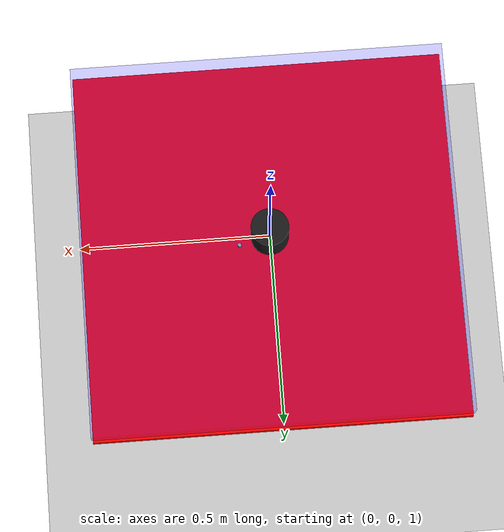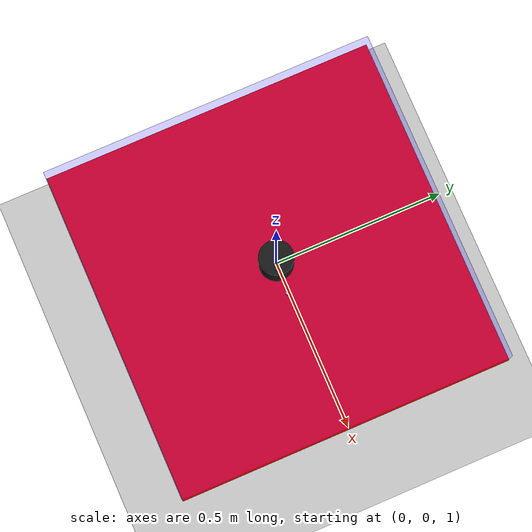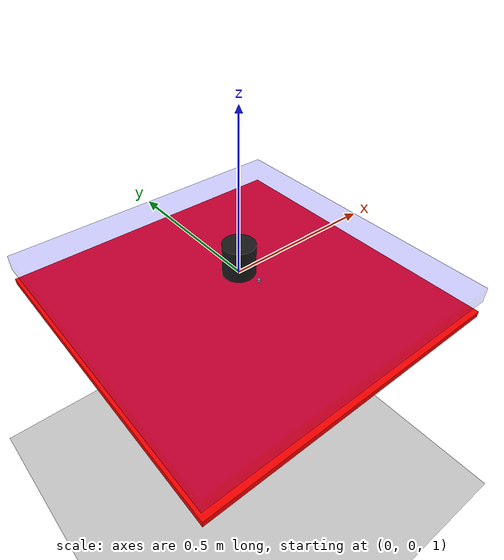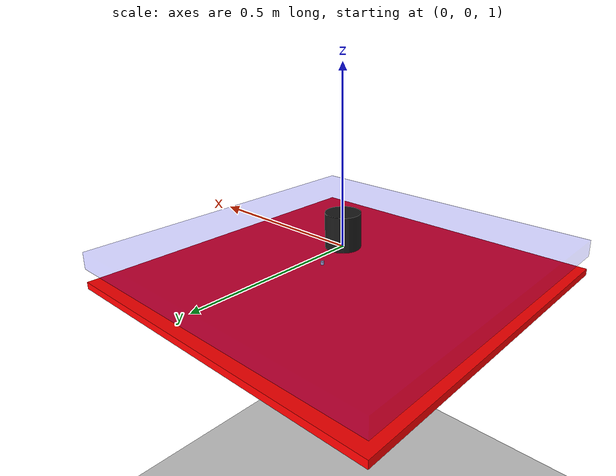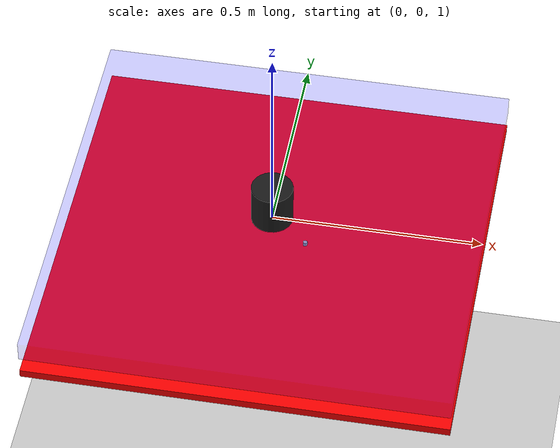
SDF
<?xml version="1.0"?>
<sdf version="1.4">
  <world name="default">

    <!-- Ground Plane -->
    <include>
      <uri>model://ground_plane</uri>
    </include>

    <include>
      <uri>model://sun</uri>
    </include>

    <model name="plane">
      <pose>0 0 0.9 0 0 0</pose>
      <static>true</static>
      <link name="link">
        <collision name="collision">
          <geometry>
            <box>
              <size>1 1 0.02</size>
            </box>
          </geometry>
        </collision>

        <visual name="visual">
          <geometry>
            <box>
              <size>1 1 0.02</size>
            </box>
          </geometry>

          <material>
            <ambient>1 0 0 1</ambient>
          </material>
        </visual>
      </link>
    </model>

    <model name="plane2">
      <pose>0 0 0.975 0 0 0</pose>
      <static>true</static>
      <link name="link">
        <collision name="collision">
          <geometry>
            <box>
              <size>1 1 0.05</size>
            </box>
          </geometry>
        </collision>

        <visual name="visual">
          <geometry>
            <box>
              <size>1 1 0.05</size>
            </box>
          </geometry>
          <transparency>0.5</transparency>
          <material>
            <diffuse>0 0 1 0.1</diffuse>
          </material>
        </visual>
      </link>
    </model>

    <model name="actuator_magnet">
      <pose>0 0 1.05 0 0 0</pose>
      <static>true</static>
      <link name="magnet">
        <inertial>
          <mass>4.0</mass>
        </inertial>
        <collision name="collision">
          <geometry>
            <cylinder>
              <radius>0.05</radius>
              <length>0.1</length>
            </cylinder>
          </geometry>
        </collision>

        <visual name="visual">
          <geometry>
            <cylinder>
              <radius>0.05</radius>
              <length>0.1</length>
            </cylinder>
          </geometry>
          <material>
            <diffuse>0.1 0.1 0.1 1</diffuse>
            <specular>0.1 0.1 0.1 1</specular>
            <emissive>0.5 0.5 0.5 0.1</emissive>
          </material>
        </visual>
      </link>
      <plugin name="dipole_magnet" filename="libstorm_gazebo_dipole_magnet.so">
          <bodyName>magnet</bodyName>
          <dipole_moment>0 0 970</dipole_moment>
          <!-- Set to false if not using ROS -->
          <shouldPublish>true</shouldPublish>
          <topicNs>electromagnet</topicNs>
          <updateRate>100</updateRate>
          <gain>0.0</gain>
      </plugin>
    </model>

    <model name="capsule_magnet">
      <pose>0.08 0 0.925 0 0 0</pose>
      <link name="magnet">
        <inertial>
          <mass>0.01</mass>
          <inertia>
            <ixx>1.8e-7</ixx>
            <ixy>0</ixy>
            <ixz>0</ixz>
            <iyy>1.8e-7</iyy>
            <iyz>0</iyz>
            <izz>1.543e-7</izz>
          </inertia>
        </inertial>
        <collision name="collision">
          <geometry>
            <cylinder>
              <radius>0.005</radius>
              <length>0.01</length>
            </cylinder>
          </geometry>
        </collision>

        <visual name="visual">
          <geometry>
            <cylinder>
              <radius>0.005</radius>
              <length>0.01</length>
            </cylinder>
          </geometry>
        </visual>
      </link>

      <plugin name="dipole_magnet" filename="libstorm_gazebo_dipole_magnet.so">
        <bodyName>magnet</bodyName>
        <dipole_moment>0 0 1.26</dipole_moment>
        <!-- Set to false if not using ROS -->
        <shouldPublish>true</shouldPublish>
        <topicNs>capsule</topicNs>
        <updateRate>100</updateRate>
        <gain>0.0</gain>
      </plugin>
    </model>

  </world>
</sdf>
